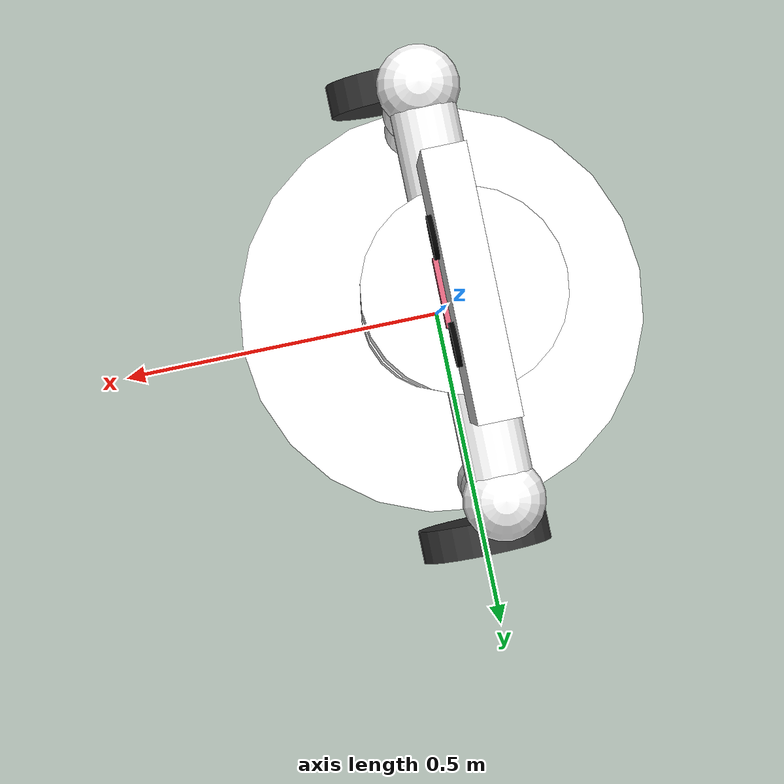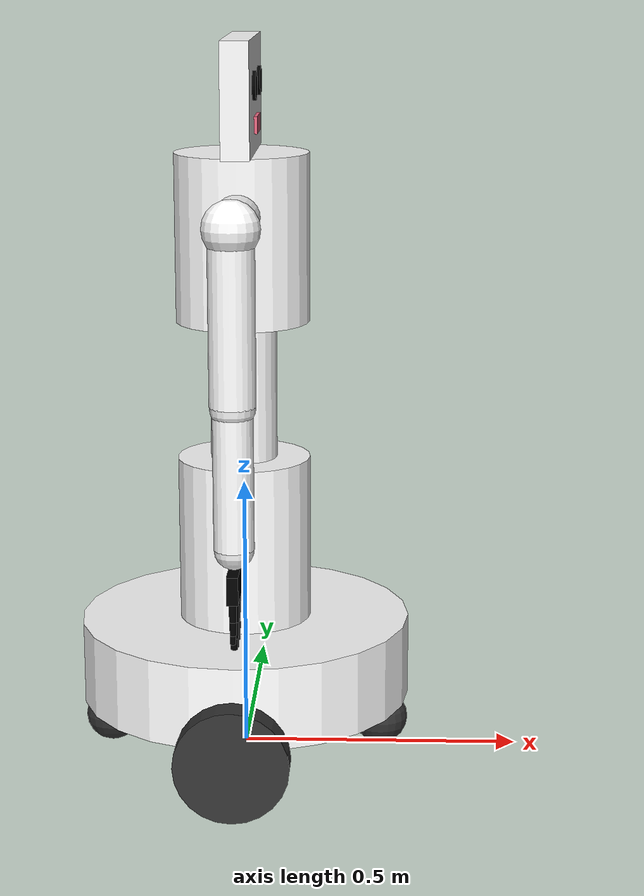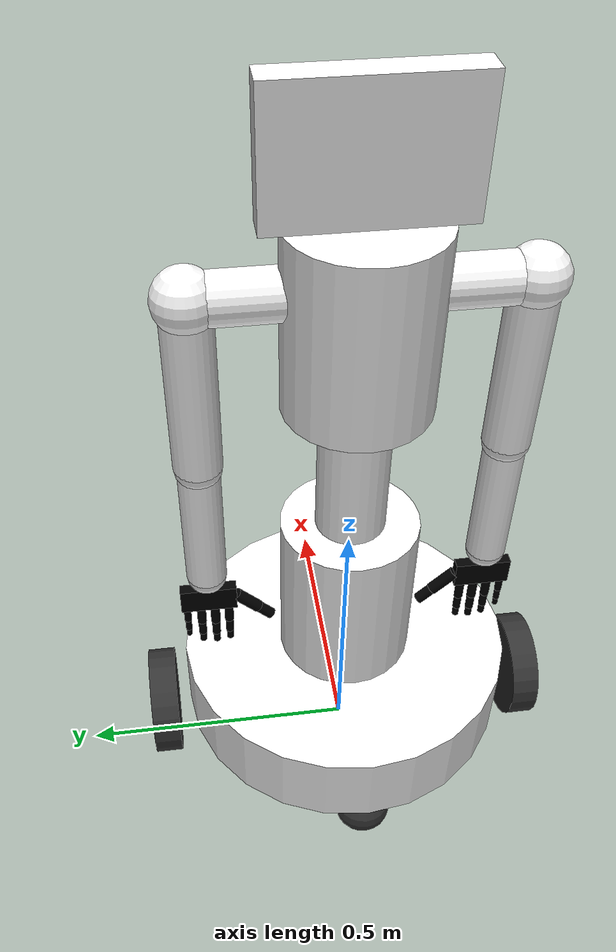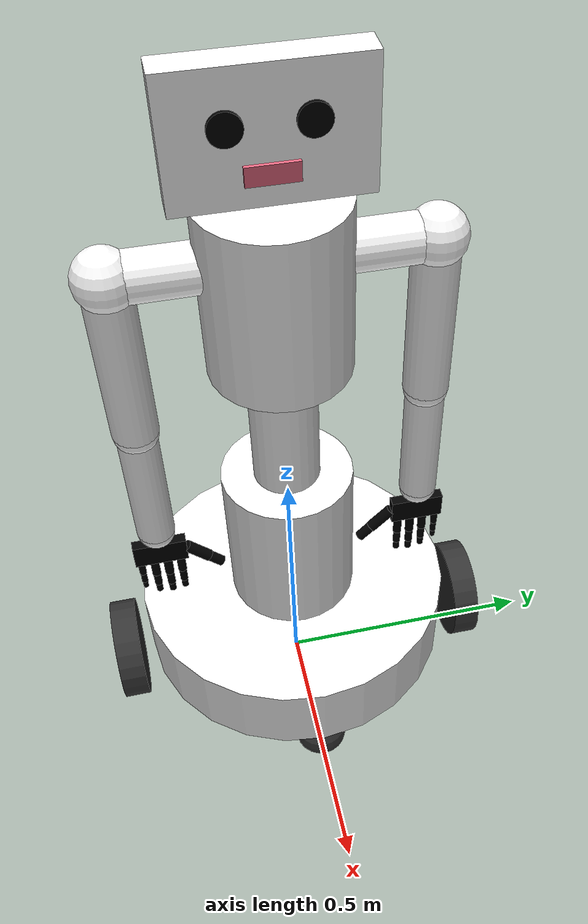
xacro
<?xml version="1.0"?>
<robot xmlns:xacro="http://www.ros.org/wiki/xacro" name="dual_arm_service_bot">

    <material name="white_mat">
        <color rgba="1.0 1.0 1.0 1.0"/>
    </material>
    <material name="dark_grey">
        <color rgba="0.2 0.2 0.2 1.0"/>
    </material>
    <material name="black_mat">
        <color rgba="0.0 0.0 0.0 1.0"/>
    </material>
    <material name="blue_mat">
        <color rgba="0.0 0.4 0.8 1.0"/>
    </material>
    <material name="pink_mat">
        <color rgba="0.9 0.4 0.5 1.0"/>
    </material>

    <xacro:macro name="box_inertia" params="m w h d">
        <inertial>
            <mass value="${m}"/>
            <inertia ixx="${(m/12)*(h*h + d*d)}" ixy="0" ixz="0" iyy="${(m/12)*(w*w + d*d)}" iyz="0" izz="${(m/12)*(w*w + h*h)}"/>
        </inertial>
    </xacro:macro>

    <xacro:macro name="cyl_inertia" params="m r h">
        <inertial>
            <mass value="${m}"/>
            <inertia ixx="${(m/12)*(3*r*r + h*h)}" ixy="0" ixz="0" iyy="${(m/12)*(3*r*r + h*h)}" iyz="0" izz="${0.5*m*r*r}"/>
        </inertial>
    </xacro:macro>

    <xacro:macro name="sph_inertia" params="m r">
        <inertial>
            <mass value="${m}"/>
            <inertia ixx="${0.4*m*r*r}" ixy="0" ixz="0" iyy="${0.4*m*r*r}" iyz="0" izz="${0.4*m*r*r}"/>
        </inertial>
    </xacro:macro>

    <xacro:macro name="pos_ctrl" params="joint">
        <gazebo>
            <plugin filename="gz-sim-joint-position-controller-system" name="gz::sim::systems::JointPositionController">
                <joint_name>${joint}</joint_name>
                <p_gain>20.0</p_gain>
                <i_gain>0.1</i_gain>
                <d_gain>1.0</d_gain>
            </plugin>
        </gazebo>
    </xacro:macro>

    <xacro:macro name="finger" params="prefix name xyz rpy scale:=1.0">
        <link name="${prefix}_${name}_p1">
            <visual><origin xyz="${0.02 * scale} 0 0" rpy="0 1.5708 0"/><geometry><cylinder radius="${0.008 * scale}" length="${0.04 * scale}"/></geometry><material name="black_mat"/></visual>
            <xacro:cyl_inertia m="0.02" r="${0.008 * scale}" h="${0.04 * scale}"/>
        </link>
        <gazebo reference="${prefix}_${name}_p1"><material>Gazebo/Black</material></gazebo>
        <joint name="${prefix}_${name}_j1" type="revolute">
            <parent link="${prefix}_palm_link"/>
            <child link="${prefix}_${name}_p1"/>
            <origin xyz="${xyz}" rpy="${rpy}"/>
            <axis xyz="0 1 0"/>
            <limit lower="0" upper="1.57" effort="2" velocity="3"/>
        </joint>
        <xacro:pos_ctrl joint="${prefix}_${name}_j1"/>

        <link name="${prefix}_${name}_p2">
            <visual><origin xyz="${0.015 * scale} 0 0" rpy="0 1.5708 0"/><geometry><cylinder radius="${0.007 * scale}" length="${0.03 * scale}"/></geometry><material name="black_mat"/></visual>
            <xacro:cyl_inertia m="0.015" r="${0.007 * scale}" h="${0.03 * scale}"/>
        </link>
        <gazebo reference="${prefix}_${name}_p2"><material>Gazebo/Black</material></gazebo>
        <joint name="${prefix}_${name}_j2" type="revolute">
            <parent link="${prefix}_${name}_p1"/>
            <child link="${prefix}_${name}_p2"/>
            <origin xyz="${0.04 * scale} 0 0" rpy="0 0 0"/>
            <axis xyz="0 1 0"/>
            <limit lower="0" upper="1.57" effort="2" velocity="3"/>
        </joint>
        <xacro:pos_ctrl joint="${prefix}_${name}_j2"/>

        <link name="${prefix}_${name}_p3">
            <visual><origin xyz="${0.01 * scale} 0 0" rpy="0 1.5708 0"/><geometry><cylinder radius="${0.006 * scale}" length="${0.02 * scale}"/></geometry><material name="black_mat"/></visual>
            <xacro:cyl_inertia m="0.01" r="${0.006 * scale}" h="${0.02 * scale}"/>
        </link>
        <gazebo reference="${prefix}_${name}_p3"><material>Gazebo/Black</material></gazebo>
        <joint name="${prefix}_${name}_j3" type="revolute">
            <parent link="${prefix}_${name}_p2"/>
            <child link="${prefix}_${name}_p3"/>
            <origin xyz="${0.03 * scale} 0 0" rpy="0 0 0"/>
            <axis xyz="0 1 0"/>
            <limit lower="0" upper="1.57" effort="2" velocity="3"/>
        </joint>
        <xacro:pos_ctrl joint="${prefix}_${name}_j3"/>
    </xacro:macro>

    <xacro:macro name="thumb" params="prefix xyz rpy scale:=1.0">
        <link name="${prefix}_thumb_p1">
            <visual><origin xyz="${0.025 * scale} 0 0" rpy="0 1.5708 0"/><geometry><cylinder radius="${0.01 * scale}" length="${0.05 * scale}"/></geometry><material name="black_mat"/></visual>
            <xacro:cyl_inertia m="0.03" r="${0.01 * scale}" h="${0.05 * scale}"/>
        </link>
        <gazebo reference="${prefix}_thumb_p1"><material>Gazebo/Black</material></gazebo>
        <joint name="${prefix}_thumb_j1" type="revolute">
            <parent link="${prefix}_palm_link"/>
            <child link="${prefix}_thumb_p1"/>
            <origin xyz="${xyz}" rpy="${rpy}"/>
            <axis xyz="0 1 0"/>
            <limit lower="0" upper="1.57" effort="3" velocity="3"/>
        </joint>
        <xacro:pos_ctrl joint="${prefix}_thumb_j1"/>

        <link name="${prefix}_thumb_p2">
            <visual><origin xyz="${0.015 * scale} 0 0" rpy="0 1.5708 0"/><geometry><cylinder radius="${0.009 * scale}" length="${0.03 * scale}"/></geometry><material name="black_mat"/></visual>
            <xacro:cyl_inertia m="0.02" r="${0.009 * scale}" h="${0.03 * scale}"/>
        </link>
        <gazebo reference="${prefix}_thumb_p2"><material>Gazebo/Black</material></gazebo>
        <joint name="${prefix}_thumb_j2" type="revolute">
            <parent link="${prefix}_thumb_p1"/>
            <child link="${prefix}_thumb_p2"/>
            <origin xyz="${0.05 * scale} 0 0" rpy="0 0 0"/>
            <axis xyz="0 1 0"/>
            <limit lower="0" upper="1.57" effort="3" velocity="3"/>
        </joint>
        <xacro:pos_ctrl joint="${prefix}_thumb_j2"/>
    </xacro:macro>

    <xacro:macro name="arm" params="prefix reflect">
        <link name="${prefix}_sh_pitch_link"><visual><geometry><sphere radius="0.05"/></geometry><material name="white_mat"/></visual><xacro:sph_inertia m="1.0" r="0.05"/></link>
        <gazebo reference="${prefix}_sh_pitch_link"><material>Gazebo/White</material></gazebo>
        <joint name="${prefix}_shoulder_pitch" type="revolute">
            <parent link="torso_link"/>
            <child link="${prefix}_sh_pitch_link"/>
            <origin xyz="0.0 ${reflect * 0.25} 0.75" rpy="0 0 0"/> <axis xyz="0 1 0"/>
            <limit lower="-2.0" upper="2.0" effort="60" velocity="1.5"/>
        </joint>
        <xacro:pos_ctrl joint="${prefix}_shoulder_pitch"/>

        <link name="${prefix}_sh_roll_link"><visual><geometry><sphere radius="0.05"/></geometry><material name="white_mat"/></visual><xacro:sph_inertia m="1.0" r="0.05"/></link>
        <gazebo reference="${prefix}_sh_roll_link"><material>Gazebo/White</material></gazebo>
        <joint name="${prefix}_shoulder_roll" type="revolute">
            <parent link="${prefix}_sh_pitch_link"/>
            <child link="${prefix}_sh_roll_link"/>
            <origin xyz="0 0 0" rpy="0 0 0"/>
            <axis xyz="1 0 0"/>
            <limit lower="-2.0" upper="2.0" effort="60" velocity="1.5"/>
        </joint>
        <xacro:pos_ctrl joint="${prefix}_shoulder_roll"/>

        <link name="${prefix}_upper_arm_link">
            <visual><origin xyz="0 0 -0.15" rpy="0 0 0"/><geometry><cylinder radius="0.04" length="0.3"/></geometry><material name="white_mat"/></visual>
            <xacro:cyl_inertia m="2.0" r="0.04" h="0.3"/>
        </link>
        <gazebo reference="${prefix}_upper_arm_link"><material>Gazebo/White</material></gazebo>
        <joint name="${prefix}_shoulder_yaw" type="revolute">
            <parent link="${prefix}_sh_roll_link"/>
            <child link="${prefix}_upper_arm_link"/>
            <origin xyz="0 0 0" rpy="0 0 0"/>
            <axis xyz="0 0 1"/>
            <limit lower="-2.0" upper="2.0" effort="40" velocity="2.0"/>
        </joint>
        <gazebo>
            <plugin filename="gz-sim-joint-position-controller-system" name="gz::sim::systems::JointPositionController">
                <joint_name>${prefix}_shoulder_yaw</joint_name>
                <p_gain>20.0</p_gain>
                <i_gain>0.1</i_gain>
                <d_gain>1.0</d_gain>
                <initial_position>${reflect * 1.57}</initial_position>
            </plugin>
        </gazebo>

        <link name="${prefix}_elbow_link"><visual><geometry><sphere radius="0.04"/></geometry><material name="white_mat"/></visual><xacro:sph_inertia m="0.5" r="0.04"/></link>
        <gazebo reference="${prefix}_elbow_link"><material>Gazebo/White</material></gazebo>
        <!-- elbow bend (existing) -->
        <joint name="${prefix}_elbow" type="revolute">
            <parent link="${prefix}_upper_arm_link"/>
            <child link="${prefix}_elbow_link"/>
            <origin xyz="0 0 -0.3" rpy="0 0 0"/>
            <axis xyz="0 1 0"/>
            <limit lower="-2.5" upper="0.0" effort="40" velocity="2.0"/>
        </joint>
        <xacro:pos_ctrl joint="${prefix}_elbow"/>

        <!-- elbow roll — new intermediate link so forearm can swing up/down -->
        <link name="${prefix}_elbow_roll_link">
            <visual><geometry><sphere radius="0.035"/></geometry><material name="white_mat"/></visual>
            <xacro:sph_inertia m="0.3" r="0.035"/>
        </link>
        <gazebo reference="${prefix}_elbow_roll_link"><material>Gazebo/White</material></gazebo>
        <joint name="${prefix}_elbow_roll" type="revolute">
            <parent link="${prefix}_elbow_link"/>
            <child link="${prefix}_elbow_roll_link"/>
            <origin xyz="0 0 0" rpy="0 0 0"/>
            <axis xyz="1 0 0"/>
            <limit lower="-1.57" upper="1.57" effort="40" velocity="2.0"/>
        </joint>
        <xacro:pos_ctrl joint="${prefix}_elbow_roll"/>

        <!-- elbow yaw — new intermediate link for forearm rotation -->
        <link name="${prefix}_elbow_yaw_link">
            <visual><geometry><sphere radius="0.032"/></geometry><material name="white_mat"/></visual>
            <xacro:sph_inertia m="0.2" r="0.032"/>
        </link>
        <gazebo reference="${prefix}_elbow_yaw_link"><material>Gazebo/White</material></gazebo>
        <joint name="${prefix}_elbow_yaw" type="revolute">
            <parent link="${prefix}_elbow_roll_link"/>
            <child link="${prefix}_elbow_yaw_link"/>
            <origin xyz="0 0 0" rpy="0 0 0"/>
            <axis xyz="0 0 1"/>
            <limit lower="-1.57" upper="1.57" effort="40" velocity="2.0"/>
        </joint>
        <xacro:pos_ctrl joint="${prefix}_elbow_yaw"/>

        <link name="${prefix}_forearm_link">
            <visual><origin xyz="0 0 -0.125" rpy="0 0 0"/><geometry><cylinder radius="0.035" length="0.25"/></geometry><material name="white_mat"/></visual>
            <xacro:cyl_inertia m="1.5" r="0.035" h="0.25"/>
        </link>
        <gazebo reference="${prefix}_forearm_link"><material>Gazebo/White</material></gazebo>
        <joint name="${prefix}_wrist_pitch" type="revolute">
            <parent link="${prefix}_elbow_yaw_link"/>
            <child link="${prefix}_forearm_link"/>
            <origin xyz="0 0 0" rpy="0 0 0"/>
            <axis xyz="0 1 0"/>
            <limit lower="-1.57" upper="1.57" effort="20" velocity="2.5"/>
        </joint>
        <xacro:pos_ctrl joint="${prefix}_wrist_pitch"/>

        <link name="${prefix}_wrist_roll_link"><visual><geometry><sphere radius="0.035"/></geometry><material name="white_mat"/></visual><xacro:sph_inertia m="0.3" r="0.035"/></link>
        <gazebo reference="${prefix}_wrist_roll_link"><material>Gazebo/White</material></gazebo>
        <joint name="${prefix}_wrist_roll" type="revolute">
            <parent link="${prefix}_forearm_link"/>
            <child link="${prefix}_wrist_roll_link"/>
            <origin xyz="0 0 -0.25" rpy="0 0 0"/>
            <axis xyz="1 0 0"/>
            <limit lower="-1.57" upper="1.57" effort="20" velocity="2.5"/>
        </joint>
        <xacro:pos_ctrl joint="${prefix}_wrist_roll"/>

        <link name="${prefix}_palm_link">
            <visual><origin xyz="0.025 0 0" rpy="0 0 0"/><geometry><box size="0.05 0.1 0.02"/></geometry><material name="black_mat"/></visual>
            <xacro:box_inertia m="0.5" w="0.05" h="0.1" d="0.02"/>
        </link>
        <gazebo reference="${prefix}_palm_link"><material>Gazebo/Black</material></gazebo>
        <joint name="${prefix}_wrist_yaw" type="revolute">
            <parent link="${prefix}_wrist_roll_link"/>
            <child link="${prefix}_palm_link"/>
            <origin xyz="0 0 -0.035" rpy="0 1.5708 0"/>
            <axis xyz="0 0 1"/>
            <limit lower="-1.57" upper="1.57" effort="10" velocity="3.0"/>
        </joint>
        <xacro:pos_ctrl joint="${prefix}_wrist_yaw"/>

        <xacro:finger prefix="${prefix}" name="index"  xyz="0.05 ${reflect * -0.035} 0" rpy="0 0 0" scale="1.0"/>
        <xacro:finger prefix="${prefix}" name="middle" xyz="0.05 ${reflect * -0.010} 0" rpy="0 0 0" scale="1.05"/>
        <xacro:finger prefix="${prefix}" name="ring"   xyz="0.05 ${reflect * 0.015} 0" rpy="0 0 0" scale="1.0"/>
        <xacro:finger prefix="${prefix}" name="pinky"  xyz="0.05 ${reflect * 0.040} 0" rpy="0 0 0" scale="0.8"/>
        <xacro:thumb prefix="${prefix}" xyz="0.025 ${reflect * -0.05} 0" rpy="0 0 ${reflect * -0.785}" scale="1.1"/>
    </xacro:macro>

    <link name="base_footprint"/>

    <link name="base_link">
        <visual><origin xyz="0 0 0.075" rpy="0 0 0"/><geometry><cylinder radius="0.3" length="0.15"/></geometry><material name="white_mat"/></visual>
        <xacro:cyl_inertia m="15.0" r="0.3" h="0.15"/>
    </link>
    <gazebo reference="base_link"><material>Gazebo/White</material></gazebo>

    <joint name="base_joint" type="fixed">
        <parent link="base_footprint"/>
        <child link="base_link"/>
        <origin xyz="0 0 0.1" rpy="0 0 0"/>
    </joint>

    <xacro:macro name="wheel" params="prefix y_dir">
        <link name="${prefix}_wheel">
            <visual><origin xyz="0 0 0" rpy="1.5708 0 0"/><geometry><cylinder radius="0.1" length="0.05"/></geometry><material name="dark_grey"/></visual>
            <collision><origin xyz="0 0 0" rpy="1.5708 0 0"/><geometry><cylinder radius="0.1" length="0.05"/></geometry></collision>
            <xacro:cyl_inertia m="2.0" r="0.1" h="0.05"/>
        </link>

        <!-- 💡 UPDATED GAZEBO REFERENCE BLOCK WITH SURFACE FRICTION OVERRIDES -->
        <gazebo reference="${prefix}_wheel">
            <material>Gazebo/DarkGrey</material>
            <mu1>1.5</mu1>
            <mu2>1.5</mu2>
            <kp>1000000.0</kp>
            <kd>1.0</kd>
        </gazebo>

        <joint name="${prefix}_wheel_joint" type="continuous">
            <parent link="base_link"/>
            <child link="${prefix}_wheel"/>
            <origin xyz="0 ${y_dir * 0.35} 0.0" rpy="0 0 0"/>
            <axis xyz="0 1 0"/>
            <dynamics damping="0.1" friction="0.1"/>
        </joint>
    </xacro:macro>
    <xacro:wheel prefix="left" y_dir="1"/>
    <xacro:wheel prefix="right" y_dir="-1"/>

    <xacro:macro name="caster" params="prefix x_dir">
        <link name="${prefix}_caster">
            <visual><geometry><sphere radius="0.05"/></geometry><material name="dark_grey"/></visual>
            <collision><geometry><sphere radius="0.05"/></geometry></collision>
            <xacro:sph_inertia m="0.5" r="0.05"/>
        </link>
        <gazebo reference="${prefix}_caster"><material>Gazebo/DarkGrey</material><mu1>0.01</mu1><mu2>0.01</mu2></gazebo>
        <joint name="${prefix}_caster_joint" type="fixed">
            <parent link="base_link"/>
            <child link="${prefix}_caster"/>
            <origin xyz="${x_dir * 0.25} 0 -0.05" rpy="0 0 0"/>
        </joint>
    </xacro:macro>
    <xacro:caster prefix="front" x_dir="1"/>
    <xacro:caster prefix="rear" x_dir="-1"/>

    <link name="torso_link">
        <visual><origin xyz="0 0 0.15" rpy="0 0 0"/><geometry><cylinder radius="0.12" length="0.3"/></geometry><material name="white_mat"/></visual>
        <visual><origin xyz="0 0 0.425" rpy="0 0 0"/><geometry><cylinder radius="0.06" length="0.25"/></geometry><material name="white_mat"/></visual>
        <visual><origin xyz="0 0 0.7" rpy="0 0 0"/><geometry><cylinder radius="0.12" length="0.3"/></geometry><material name="white_mat"/></visual>
        <visual><origin xyz="0 0 0.75" rpy="1.5708 0 0"/><geometry><cylinder radius="0.04" length="0.5"/></geometry><material name="white_mat"/></visual>
        <xacro:cyl_inertia m="8.0" r="0.12" h="0.85"/>
    </link>
    <gazebo reference="torso_link"><material>Gazebo/White</material></gazebo>

    <joint name="torso_lift_joint" type="prismatic">
        <parent link="base_link"/>
        <child link="torso_link"/>
        <origin xyz="0 0 0.15" rpy="0 0 0"/>
        <axis xyz="0 0 1"/>
        <limit lower="0.0" upper="0.3" effort="1000" velocity="0.5"/>
    </joint>
    <xacro:pos_ctrl joint="torso_lift_joint"/>

    <link name="head_link">
        <visual><origin xyz="0 0 0" rpy="0 0 0"/><geometry><box size="0.05 0.3 0.2"/></geometry><material name="white_mat"/></visual>
        <xacro:box_inertia m="1.5" w="0.05" h="0.3" d="0.2"/>
    </link>

<gazebo reference="head_link">
    <material>Gazebo/White</material>
</gazebo>

    <!-- Head tilt (nod up/down) -->
    <link name="head_pitch_link">
        <xacro:sph_inertia m="0.3" r="0.03"/>
    </link>
    <joint name="head_pitch" type="revolute">
        <parent link="torso_link"/>
        <child link="head_pitch_link"/>
        <origin xyz="0 0 0.95" rpy="0 0 0"/>
        <axis xyz="0 1 0"/>
        <limit lower="-0.5" upper="0.5" effort="10" velocity="1.0"/>
    </joint>
    <xacro:pos_ctrl joint="head_pitch"/>

    <!-- Head pan (look left/right) -->
    <joint name="head_yaw" type="revolute">
        <parent link="head_pitch_link"/>
        <child link="head_link"/>
        <origin xyz="0 0 0" rpy="0 0 0"/>
        <axis xyz="0 0 1"/>
        <limit lower="-1.0" upper="1.0" effort="10" velocity="1.0"/>
    </joint>
    <xacro:pos_ctrl joint="head_yaw"/>

    <link name="left_eye_link">
    <visual>
        <origin xyz="0 0 0" rpy="0 1.5708 0"/>
        <geometry><cylinder radius="0.025" length="0.01"/></geometry>
        <material name="black_mat"/>
    </visual>
    <xacro:sph_inertia m="0.01" r="0.01"/>
</link>
<gazebo reference="left_eye_link"><material>Gazebo/Black</material></gazebo>
<joint name="left_eye_joint" type="fixed">
    <parent link="head_link"/>
    <child link="left_eye_link"/>
    <origin xyz="0.026 0.06 0.02" rpy="0 0 0"/>
</joint>

<link name="right_eye_link">
    <visual>
        <origin xyz="0 0 0" rpy="0 1.5708 0"/>
        <geometry><cylinder radius="0.025" length="0.01"/></geometry>
        <material name="black_mat"/>
    </visual>
    <xacro:sph_inertia m="0.01" r="0.01"/>
</link>
<gazebo reference="right_eye_link"><material>Gazebo/Black</material></gazebo>
<joint name="right_eye_joint" type="fixed">
    <parent link="head_link"/>
    <child link="right_eye_link"/>
    <origin xyz="0.026 -0.06 0.02" rpy="0 0 0"/>
</joint>

<link name="mouth_link">
        <visual>
            <origin xyz="0 0 0" rpy="0 0 0"/>
            <geometry><box size="0.01 0.08 0.03"/></geometry>
            <material name="pink_mat"/>
        </visual>
        <xacro:box_inertia m="0.01" w="0.01" h="0.08" d="0.03"/>
    </link>
    <gazebo reference="mouth_link"><material>Gazebo/Pink</material></gazebo>
    <joint name="mouth_joint" type="fixed">
        <parent link="head_link"/>
        <child link="mouth_link"/>
        <origin xyz="0.026 0.0 -0.05" rpy="0 0 0"/>
    </joint>

    <xacro:arm prefix="left" reflect="1"/>
    <xacro:arm prefix="right" reflect="-1"/>

    <gazebo>
        <plugin filename="gz-sim-diff-drive-system" name="gz::sim::systems::DiffDrive">
            <left_joint>left_wheel_joint</left_joint>
            <right_joint>right_wheel_joint</right_joint>
            <wheel_separation>0.7</wheel_separation>
            <wheel_radius>0.1</wheel_radius>
            <odom_publish_frequency>50</odom_publish_frequency>
            <max_linear_acceleration>2.0</max_linear_acceleration>
            <max_angular_acceleration>4.0</max_angular_acceleration>
            <topic>/model/dual_arm_service_bot/cmd_vel</topic>

            <robot_base_frame>base_footprint</robot_base_frame>
            <odom_topic>/model/dual_arm_service_bot/odom</odom_topic>
            <tf_topic>/model/dual_arm_service_bot/tf</tf_topic>
        </plugin>
    </gazebo>

</robot>
